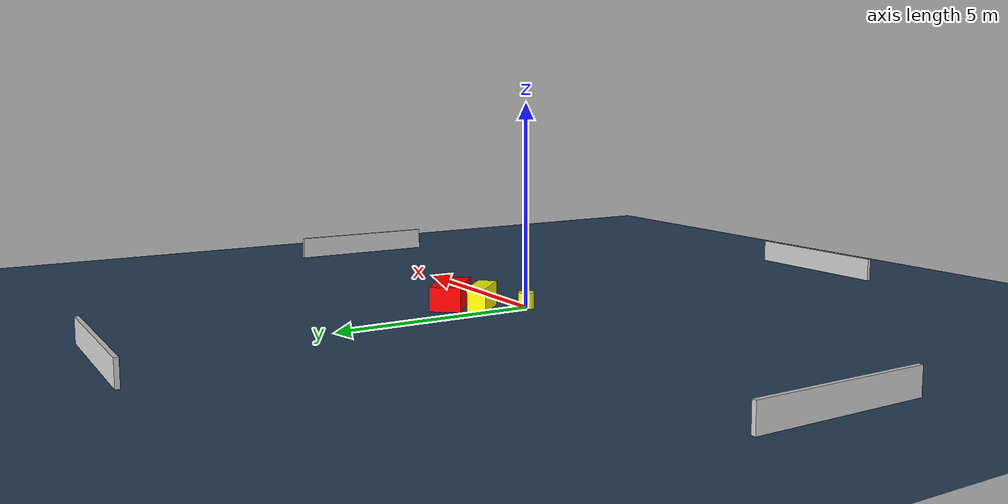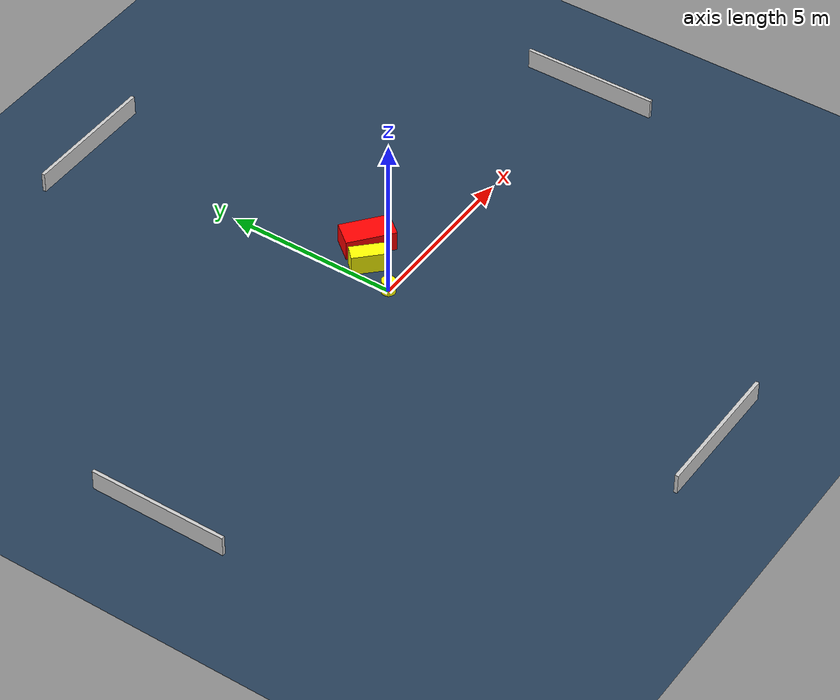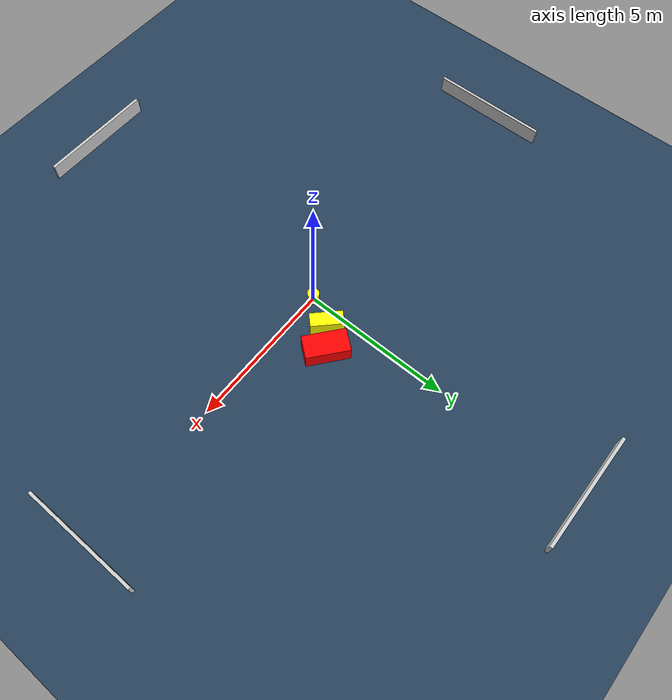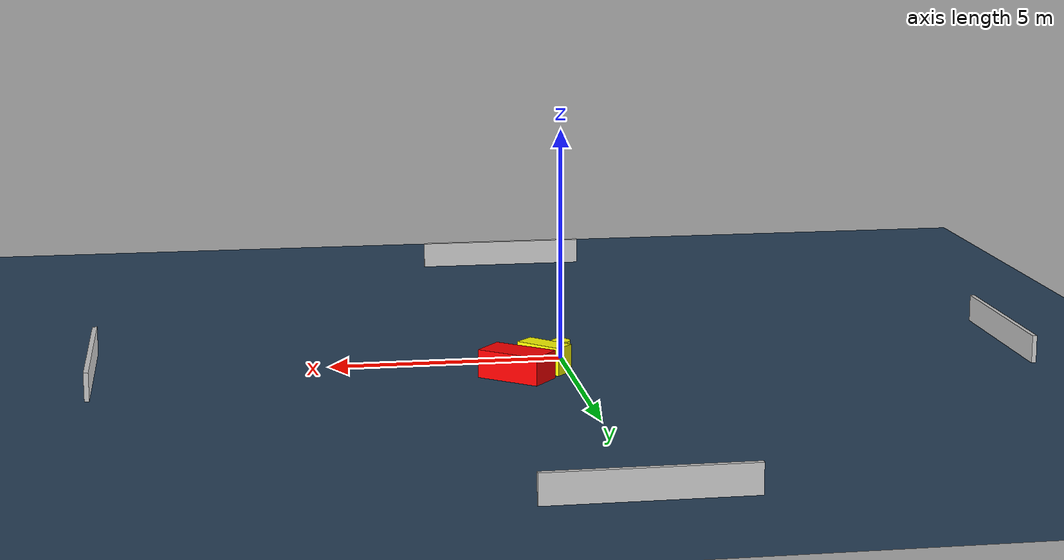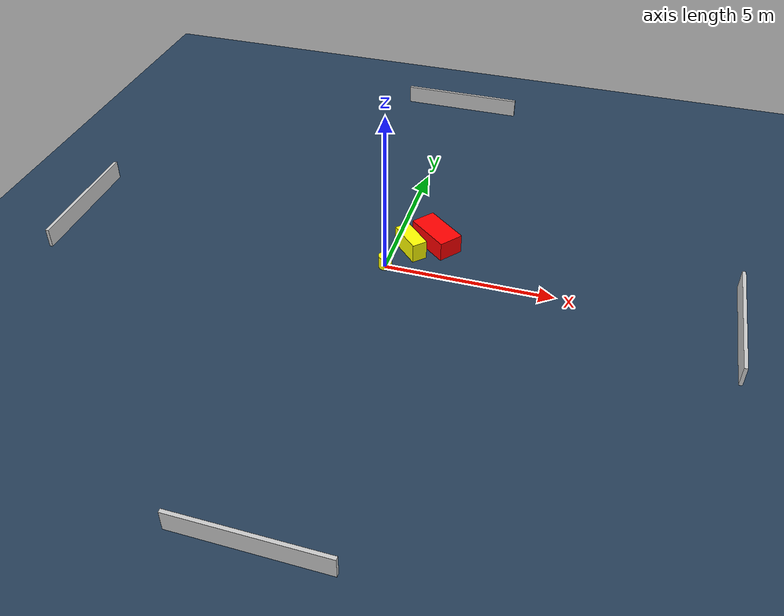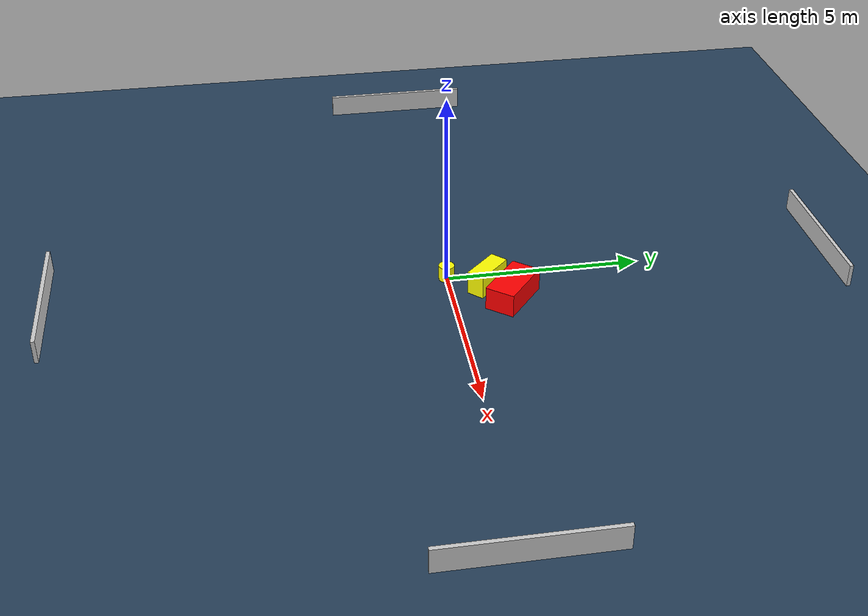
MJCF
<?xml version="1.0" ?>
<mujoco model="generated_environment">
  <option timestep="0.01" integrator="RK4" cone="elliptic"/>
  <default>
    <geom density="1"/>
  </default>
  <asset>
    <texture builtin="gradient" height="3072" name="skybox" rgb1="0.3 0.5 0.7" rgb2="0 0 0" type="skybox" width="512"/>
    <texture builtin="checker" height="300" name="groundplane" rgb1="0.2 0.3 0.4" rgb2="0.1 0.2 0.3" type="2d" width="300"/>
    <material name="groundplane" reflectance="0.2" texrepeat="5 5" texture="groundplane"/>
  </asset>
  <worldbody>
    <light dir="0 0 -1" directional="true" pos="0 0 1.5"/>
    <geom condim="3" friction="0.5 0.005 0.001" material="groundplane" name="floor" pos="0 0 0" size="0 0 0.05" type="plane"/>
    <body name="walls">
      <geom name="wall_1" condim="4" pos="-10.0 0.0 0.3" rgba="0.800000011920929 0.800000011920929 0.800000011920929 1.0" size="0.05 2.0 0.3" type="box"/>
      <geom name="wall_2" condim="4" pos="10.0 0.0 0.3" rgba="0.800000011920929 0.800000011920929 0.800000011920929 1.0" size="0.05 2.0 0.3" type="box"/>
      <geom name="wall_3" condim="4" pos="0.0 -10.0 0.3" rgba="0.800000011920929 0.800000011920929 0.800000011920929 1.0" size="2.0 0.05 0.3" type="box"/>
      <geom name="wall_4" condim="4" pos="0.0 10.0 0.3" rgba="0.800000011920929 0.800000011920929 0.800000011920929 1.0" size="2.0 0.05 0.3" type="box"/>
    </body>
    <body name="robot">
      <joint name="joint_x" type="slide" pos="0 0 0" axis="1 0 0"/>
      <joint name="joint_y" type="slide" pos="0 0 0" axis="0 1 0"/>
      <geom name="robot" type="cylinder" pos="0.0 0.0 0.2" size="0.2 0.2 0.0" mass="5.0" friction="1.0 0.005 0.0001" condim="4" rgba="1.0 1.0 0.0 1.0"/>
    </body>
    <body name="obstacle_1_movable">
      <geom name="obstacle_1_movable" condim="4" pos="0.5080497899909581 0.9592549542058098 0.3" euler="0 0 45.076103323086585" friction="0.0 0.005 0.001" rgba="1.0 1.0 0.0 1.0" size="0.2321757826044221 0.5373049352180626 0.3" type="box" mass="0.1"/>
      <joint type="free"/>
    </body>
    <body name="obstacle_2_static">
      <geom name="obstacle_2_static" condim="4" pos="1.1745973349867147 1.480314806580202 0.3" euler="0 0 321.05568998149846" friction="0.0 0.005 0.001" rgba="1.0 0.0 0.0 1.0" size="0.7164239055571331 0.3826285468851077 0.3" type="box"/>
    </body>
  </worldbody>
  <actuator>
    <motor name="actuator_x" joint="joint_x" gear="1" ctrlrange="-1 1"/>
    <motor name="actuator_y" joint="joint_y" gear="1" ctrlrange="-1 1"/>
  </actuator>
</mujoco>
